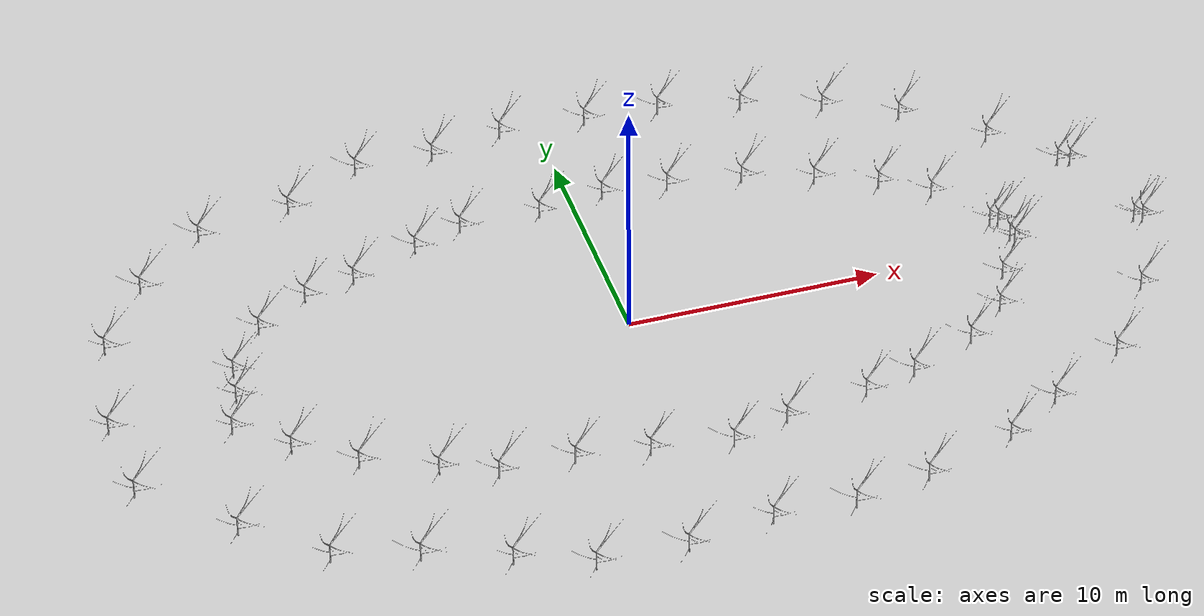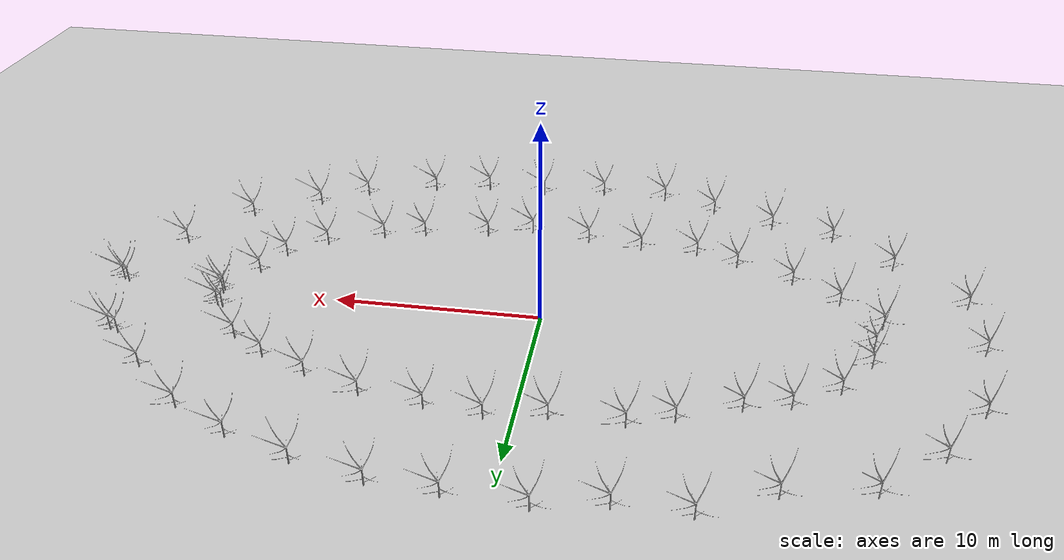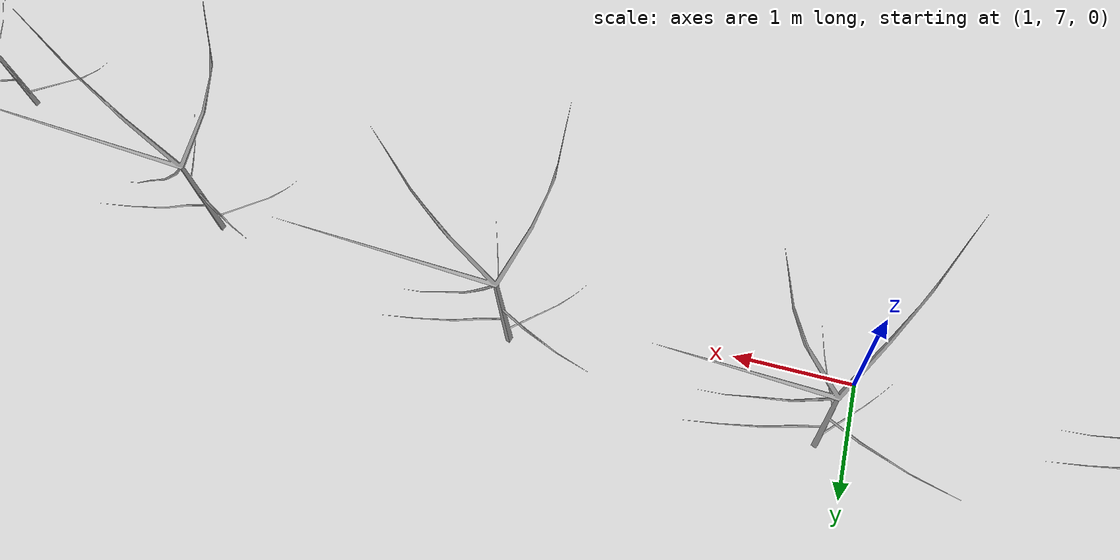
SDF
<?xml version="1.0" ?>
<sdf version="1.5">
  <world name="default">
    <!-- A global light source -->
    <include>
      <uri>model://sun</uri>
    </include>
    <!-- A ground plane -->
    <include>
      <uri>model://ground_plane</uri>
    </include>
    <include>
      <uri>model://bush</uri>
      <pose>15.64975 0.34483 0.0 0.0 0.0 0.0</pose>
    </include>
    <include>
      <uri>model://bush</uri>
      <pose>15.23414 1.45766 0.0 0.0 0.0 0.0</pose>
    </include>
    <include>
      <uri>model://bush</uri>
      <pose>13.65437 3.79138 0.0 0.0 0.0 0.0</pose>
    </include>
    <include>
      <uri>model://bush</uri>
      <pose>11.8728 4.97665 0.0 0.0 0.0 0.0</pose>
    </include>
    <include>
      <uri>model://bush</uri>
      <pose>9.53228 6.00842 0.0 0.0 0.0 0.0</pose>
    </include>
    <include>
      <uri>model://bush</uri>
      <pose>6.80969 6.93882 0.0 0.0 0.0 0.0</pose>
    </include>
    <include>
      <uri>model://bush</uri>
      <pose>3.84803 7.3487 0.0 0.0 0.0 0.0</pose>
    </include>
    <include>
      <uri>model://bush</uri>
      <pose>1.23197 7.59645 0.0 0.0 0.0 0.0</pose>
    </include>
    <include>
      <uri>model://bush</uri>
      <pose>-1.45604 7.19021 0.0 0.0 0.0 0.0</pose>
    </include>
    <include>
      <uri>model://bush</uri>
      <pose>-4.68457 7.20069 0.0 0.0 0.0 0.0</pose>
    </include>
    <include>
      <uri>model://bush</uri>
      <pose>-6.69359 6.52127 0.0 0.0 0.0 0.0</pose>
    </include>
    <include>
      <uri>model://bush</uri>
      <pose>-9.44931 5.3995 0.0 0.0 0.0 0.0</pose>
    </include>
    <include>
      <uri>model://bush</uri>
      <pose>-11.48991 4.9159 0.0 0.0 0.0 0.0</pose>
    </include>
    <include>
      <uri>model://bush</uri>
      <pose>-13.62784 3.59072 0.0 0.0 0.0 0.0</pose>
    </include>
    <include>
      <uri>model://bush</uri>
      <pose>-15.12578 1.45881 0.0 0.0 0.0 0.0</pose>
    </include>
    <include>
      <uri>model://bush</uri>
      <pose>-15.35493 0.02243 0.0 0.0 0.0 0.0</pose>
    </include>
    <include>
      <uri>model://bush</uri>
      <pose>-15.90363 -1.65666 0.0 0.0 0.0 0.0</pose>
    </include>
    <include>
      <uri>model://bush</uri>
      <pose>-14.06719 -3.34417 0.0 0.0 0.0 0.0</pose>
    </include>
    <include>
      <uri>model://bush</uri>
      <pose>-11.8866 -4.86771 0.0 0.0 0.0 0.0</pose>
    </include>
    <include>
      <uri>model://bush</uri>
      <pose>-9.17368 -6.06962 0.0 0.0 0.0 0.0</pose>
    </include>
    <include>
      <uri>model://bush</uri>
      <pose>-7.12752 -6.91876 0.0 0.0 0.0 0.0</pose>
    </include>
    <include>
      <uri>model://bush</uri>
      <pose>-4.23798 -6.98723 0.0 0.0 0.0 0.0</pose>
    </include>
    <include>
      <uri>model://bush</uri>
      <pose>-1.45594 -7.37672 0.0 0.0 0.0 0.0</pose>
    </include>
    <include>
      <uri>model://bush</uri>
      <pose>1.61749 -7.85942 0.0 0.0 0.0 0.0</pose>
    </include>
    <include>
      <uri>model://bush</uri>
      <pose>3.90731 -7.17045 0.0 0.0 0.0 0.0</pose>
    </include>
    <include>
      <uri>model://bush</uri>
      <pose>7.21803 -6.64983 0.0 0.0 0.0 0.0</pose>
    </include>
    <include>
      <uri>model://bush</uri>
      <pose>9.31345 -6.10986 0.0 0.0 0.0 0.0</pose>
    </include>
    <include>
      <uri>model://bush</uri>
      <pose>12.03172 -4.9426 0.0 0.0 0.0 0.0</pose>
    </include>
    <include>
      <uri>model://bush</uri>
      <pose>13.76102 -3.49828 0.0 0.0 0.0 0.0</pose>
    </include>
    <include>
      <uri>model://bush</uri>
      <pose>14.53981 -1.74209 0.0 0.0 0.0 0.0</pose>
    </include>
    <include>
      <uri>model://bush</uri>
      <pose>15.71555 0.02133 0.0 0.0 0.0 0.0</pose>
    </include>
    <include>
      <uri>model://bush</uri>
      <pose>15.52809 1.33635 0.0 0.0 0.0 0.0</pose>
    </include>
    <include>
      <uri>model://bush</uri>
      <pose>20.72309 0.04926 0.0 0.0 0.0 0.0</pose>
    </include>
    <include>
      <uri>model://bush</uri>
      <pose>19.63262 4.07719 0.0 0.0 0.0 0.0</pose>
    </include>
    <include>
      <uri>model://bush</uri>
      <pose>16.99608 6.53069 0.0 0.0 0.0 0.0</pose>
    </include>
    <include>
      <uri>model://bush</uri>
      <pose>14.16305 8.95691 0.0 0.0 0.0 0.0</pose>
    </include>
    <include>
      <uri>model://bush</uri>
      <pose>11.38131 10.39316 0.0 0.0 0.0 0.0</pose>
    </include>
    <include>
      <uri>model://bush</uri>
      <pose>8.24935 11.46327 0.0 0.0 0.0 0.0</pose>
    </include>
    <include>
      <uri>model://bush</uri>
      <pose>4.97531 12.17747 0.0 0.0 0.0 0.0</pose>
    </include>
    <include>
      <uri>model://bush</uri>
      <pose>1.93503 12.36187 0.0 0.0 0.0 0.0</pose>
    </include>
    <include>
      <uri>model://bush</uri>
      <pose>-1.55766 12.52813 0.0 0.0 0.0 0.0</pose>
    </include>
    <include>
      <uri>model://bush</uri>
      <pose>-4.52921 11.9389 0.0 0.0 0.0 0.0</pose>
    </include>
    <include>
      <uri>model://bush</uri>
      <pose>-7.68007 11.97204 0.0 0.0 0.0 0.0</pose>
    </include>
    <include>
      <uri>model://bush</uri>
      <pose>-10.80758 10.38246 0.0 0.0 0.0 0.0</pose>
    </include>
    <include>
      <uri>model://bush</uri>
      <pose>-14.56402 9.71581 0.0 0.0 0.0 0.0</pose>
    </include>
    <include>
      <uri>model://bush</uri>
      <pose>-17.40797 7.29498 0.0 0.0 0.0 0.0</pose>
    </include>
    <include>
      <uri>model://bush</uri>
      <pose>-19.46577 4.19699 0.0 0.0 0.0 0.0</pose>
    </include>
    <include>
      <uri>model://bush</uri>
      <pose>-20.2766 -0.30136 0.0 0.0 0.0 0.0</pose>
    </include>
    <include>
      <uri>model://bush</uri>
      <pose>-20.10211 -3.97936 0.0 0.0 0.0 0.0</pose>
    </include>
    <include>
      <uri>model://bush</uri>
      <pose>-16.96553 -7.05276 0.0 0.0 0.0 0.0</pose>
    </include>
    <include>
      <uri>model://bush</uri>
      <pose>-14.13428 -9.42659 0.0 0.0 0.0 0.0</pose>
    </include>
    <include>
      <uri>model://bush</uri>
      <pose>-11.01925 -10.29859 0.0 0.0 0.0 0.0</pose>
    </include>
    <include>
      <uri>model://bush</uri>
      <pose>-7.91618 -11.4932 0.0 0.0 0.0 0.0</pose>
    </include>
    <include>
      <uri>model://bush</uri>
      <pose>-5.14835 -12.61814 0.0 0.0 0.0 0.0</pose>
    </include>
    <include>
      <uri>model://bush</uri>
      <pose>-1.69553 -12.70686 0.0 0.0 0.0 0.0</pose>
    </include>
    <include>
      <uri>model://bush</uri>
      <pose>1.67073 -12.22137 0.0 0.0 0.0 0.0</pose>
    </include>
    <include>
      <uri>model://bush</uri>
      <pose>4.82657 -12.31441 0.0 0.0 0.0 0.0</pose>
    </include>
    <include>
      <uri>model://bush</uri>
      <pose>7.83434 -11.74529 0.0 0.0 0.0 0.0</pose>
    </include>
    <include>
      <uri>model://bush</uri>
      <pose>11.48741 -10.57114 0.0 0.0 0.0 0.0</pose>
    </include>
    <include>
      <uri>model://bush</uri>
      <pose>13.80282 -9.13129 0.0 0.0 0.0 0.0</pose>
    </include>
    <include>
      <uri>model://bush</uri>
      <pose>17.02916 -7.2673 0.0 0.0 0.0 0.0</pose>
    </include>
    <include>
      <uri>model://bush</uri>
      <pose>19.38458 -3.94173 0.0 0.0 0.0 0.0</pose>
    </include>
    <include>
      <uri>model://bush</uri>
      <pose>21.02875 -0.10953 0.0 0.0 0.0 0.0</pose>
    </include>
    <include>
      <uri>model://bush</uri>
      <pose>19.17639 4.25448 0.0 0.0 0.0 0.0</pose>
    </include>
  </world>
</sdf>

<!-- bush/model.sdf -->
<sdf version='1.6'>
  <model name='bush'>
    <link name='body'>
      <pose frame=''>0 0 0 0 -0 0</pose>
      <self_collide>0</self_collide>
      <kinematic>0</kinematic>
      <gravity>1</gravity>
      <inertial>
        <mass>1</mass>
        <pose frame=''>0 0 0 0 -0 0</pose>
        <inertia>
          <ixx>1</ixx>
          <ixy>0</ixy>
          <ixz>0</ixz>
          <iyy>1</iyy>
          <iyz>0</iyz>
          <izz>1</izz>
        </inertia>
      </inertial>
      <visual name='visual'>
        <geometry>
          <mesh>
            <uri>model://road_generation_gazebo/collada/bush.dae</uri>
          </mesh>
        </geometry>
        <pose frame=''>0 0 0 0 -0 0</pose>
        <cast_shadows>1</cast_shadows>
        <transparency>0</transparency>
        <material>
          <shader type='vertex'>
            <normal_map>__default__</normal_map>
          </shader>
        </material>
      </visual>
      <collision name='collision'>
        <laser_retro>0</laser_retro>
        <max_contacts>10</max_contacts>
        <pose frame=''>0 0 0 0 -0 0</pose>
        <geometry>
          <mesh>
            <uri>model://road_generation_gazebo/collada/bush_bole.dae</uri>
          </mesh>
        </geometry>
        <surface>
          <friction>
            <ode>
              <mu>1</mu>
              <mu2>1</mu2>
              <fdir1>0 0 0</fdir1>
              <slip1>0</slip1>
              <slip2>0</slip2>
            </ode>
            <torsional>
              <coefficient>1</coefficient>
              <patch_radius>0</patch_radius>
              <surface_radius>0</surface_radius>
              <use_patch_radius>1</use_patch_radius>
              <ode>
                <slip>0</slip>
              </ode>
            </torsional>
          </friction>
          <bounce>
            <restitution_coefficient>0</restitution_coefficient>
            <threshold>1e+06</threshold>
          </bounce>
          <contact>
            <collide_without_contact>0</collide_without_contact>
            <collide_without_contact_bitmask>1</collide_without_contact_bitmask>
            <collide_bitmask>1</collide_bitmask>
            <ode>
              <soft_cfm>0</soft_cfm>
              <soft_erp>0.2</soft_erp>
              <kp>1e+13</kp>
              <kd>1</kd>
              <max_vel>0.01</max_vel>
              <min_depth>0</min_depth>
            </ode>
            <bullet>
              <split_impulse>1</split_impulse>
              <split_impulse_penetration_threshold>-0.01</split_impulse_penetration_threshold>
              <soft_cfm>0</soft_cfm>
              <soft_erp>0.2</soft_erp>
              <kp>1e+13</kp>
              <kd>1</kd>
            </bullet>
          </contact>
        </surface>
      </collision>
    </link>
    <static>1</static>
    <allow_auto_disable>1</allow_auto_disable>
  </model>
</sdf>
